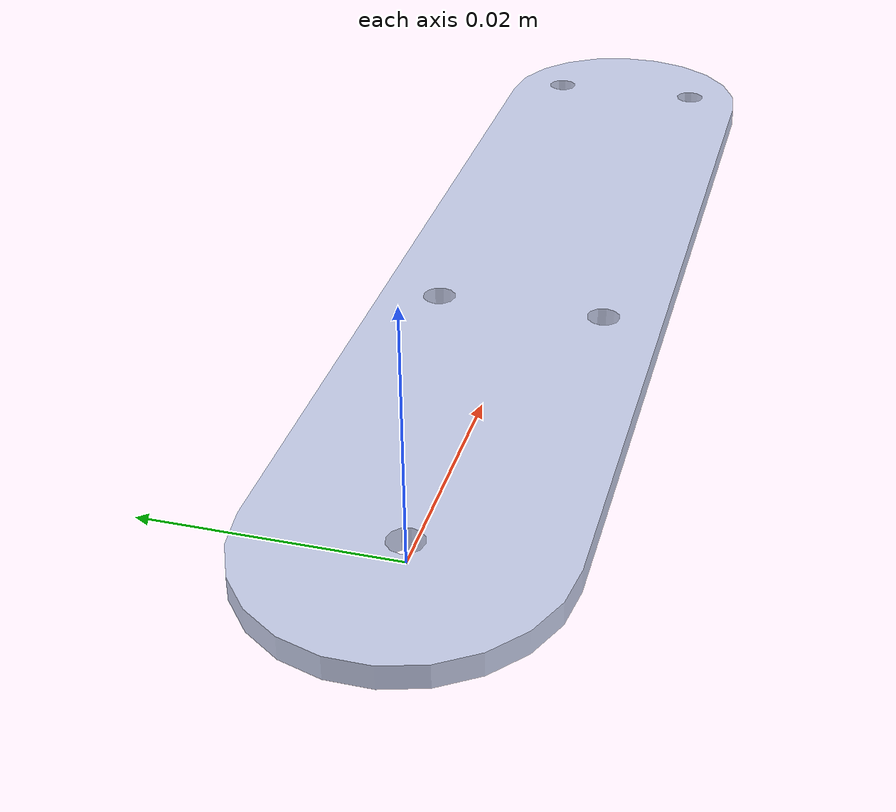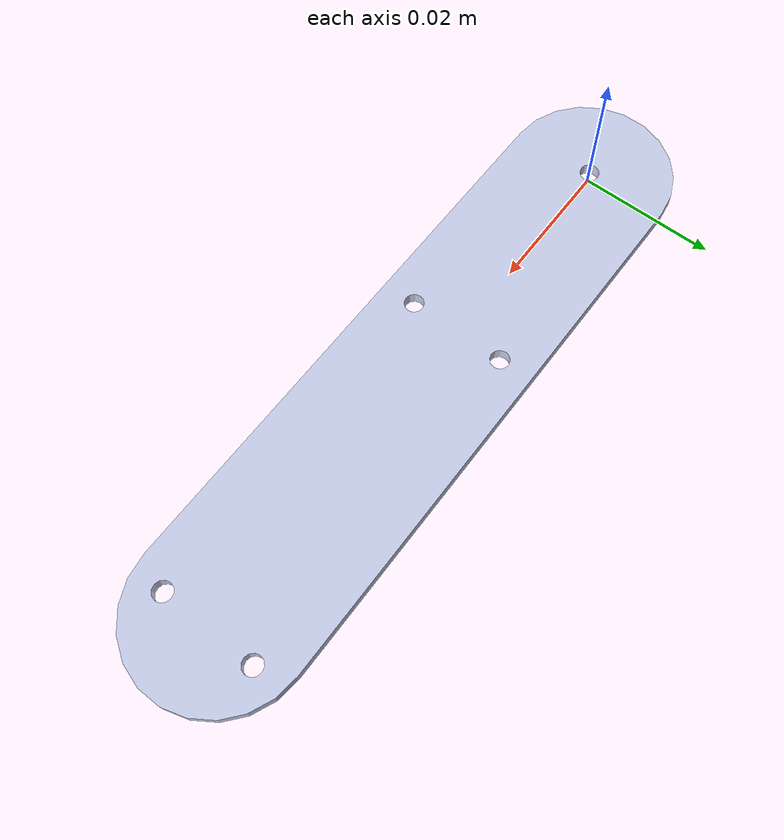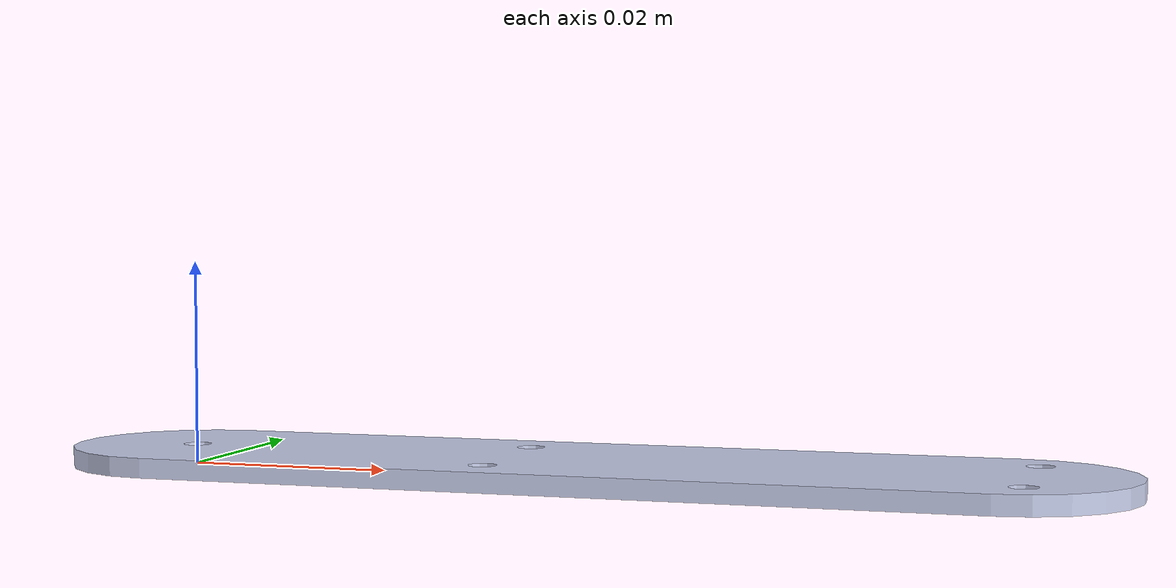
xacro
<?xml version="1.0" encoding="utf-8"?>
<robot
  name="scara_link" xmlns:xacro="http://www.ros.org/wiki/xacro">
  <link
    name="scara_link">
    <inertial>
      <origin
        xyz="0.039928 6.06729018065629E-20 0.00095"
        rpy="0 0 0" />
      <mass
        value="0.0045162" />
      <inertia
        ixx="2.1323E-07"
        ixy="8.0728E-23"
        ixz="-2.45309999999995E-25"
        iyy="3.7152E-06"
        iyz="1.28921372739805E-23"
        izz="3.9257E-06" />
    </inertial>
    <visual>
      <origin
        xyz="0 0 0"
        rpy="1.5707963267949 0 0" />
      <geometry>
        <mesh
          filename="package://scara_link/meshes/scara_link.STL" />
      </geometry>
      <material
        name="">
        <color
          rgba="0.79216 0.81961 0.93333 1" />
        <texture
          filename="package://scara_link/textures/" />
      </material>
    </visual>
    <collision>
      <origin
        xyz="0 0 0"
        rpy="1.5707963267949 0 0" />
      <geometry>
        <mesh
          filename="package://scara_link/meshes/scara_link.STL" />
      </geometry>
    </collision>
  </link>
</robot>
